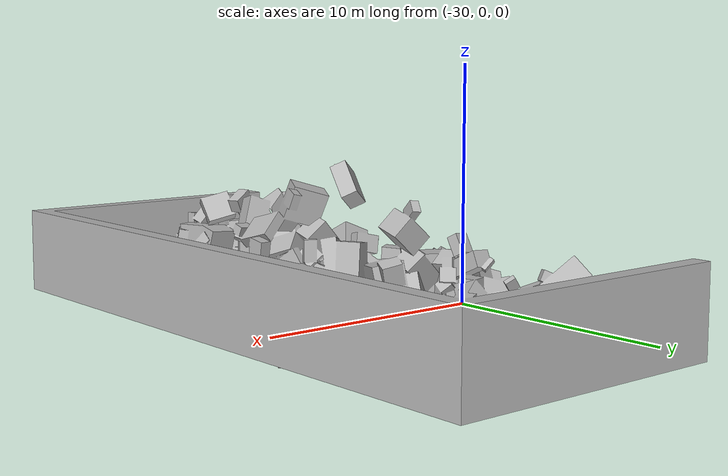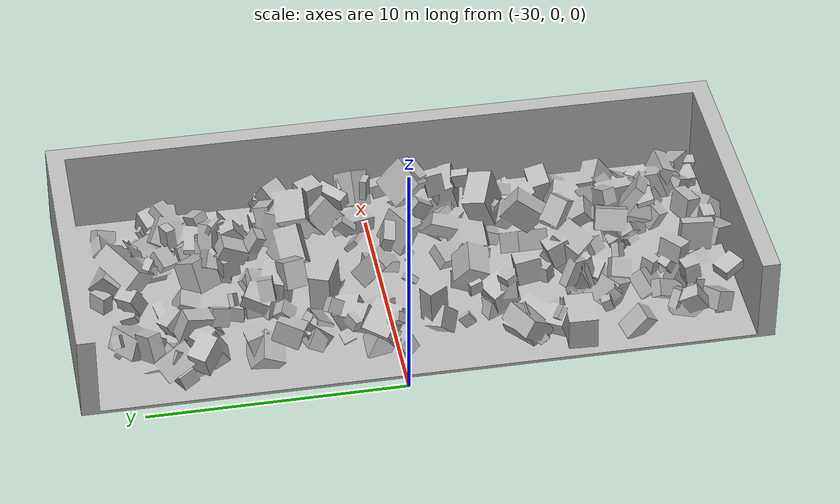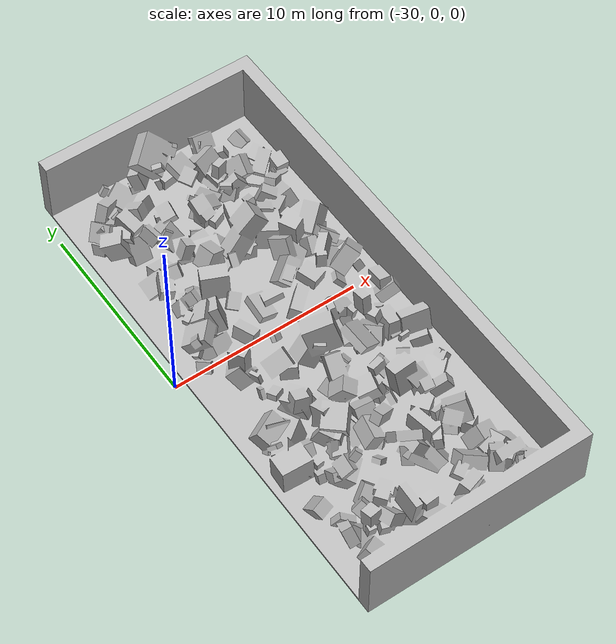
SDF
<?xml version="1.0"?>
<sdf version="1.7">
  <model name="bunker">
    <static>true</static>
    <link name="link">
      <visual name="visual">
        <geometry>
          <mesh><uri>model://bunker/meshes/bunker.obj</uri><scale>1 1 1</scale></mesh>
        </geometry>
      </visual>
      <collision name="collision">
        <geometry>
          <mesh><uri>model://bunker/meshes/bunker.obj</uri><scale>1 1 1</scale></mesh>
        </geometry>
      </collision>
    </link>
  </model>
</sdf>
